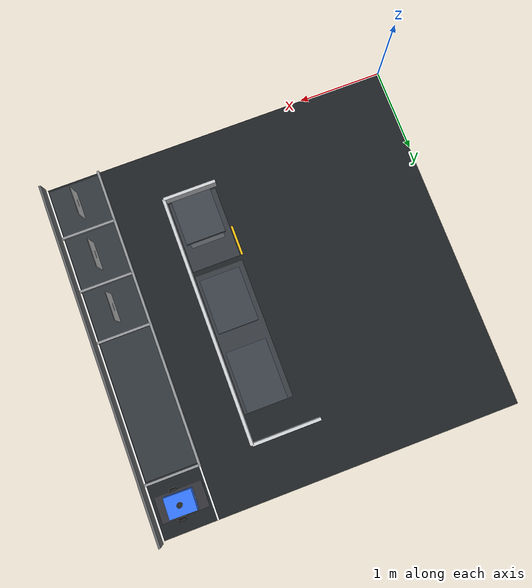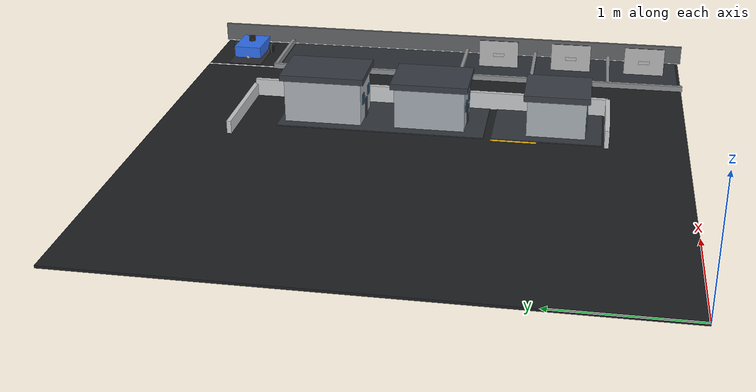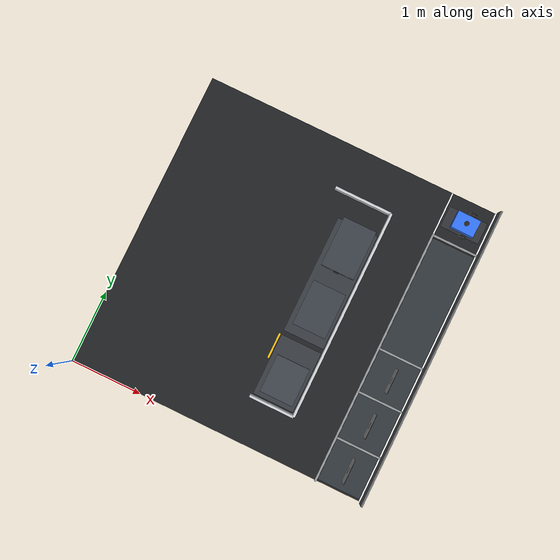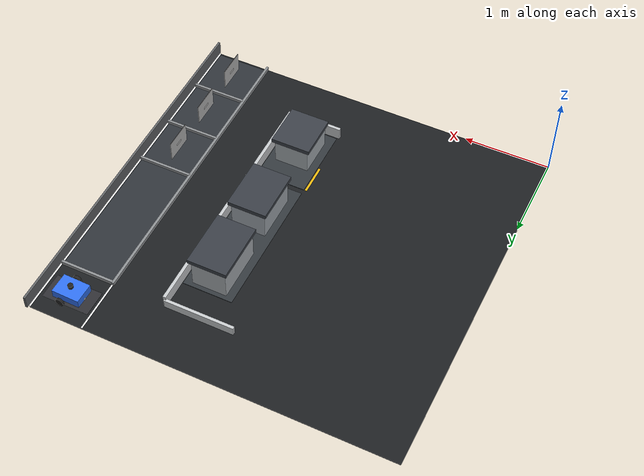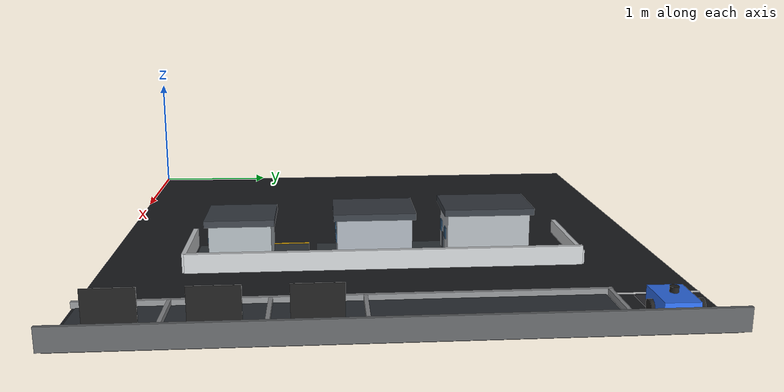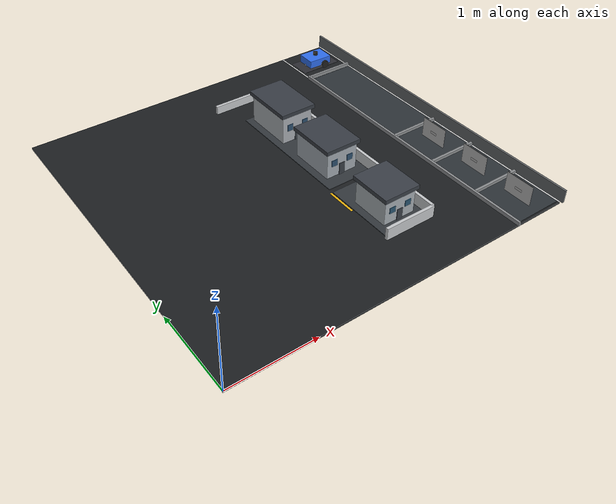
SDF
<sdf version="1.10">
 <world name="smart_community">
  <model name="ground">
   <static>true</static>
   <pose>2.1000000000000001 2.1000000000000001 -0.01 0 0 0</pose>
   <link name="link">
    <collision name="collision">
     <geometry><box><size>4.2000000000000002 4.2000000000000002 0.02</size></box></geometry>
    </collision>
    <visual name="visual">
     <geometry><box><size>4.2000000000000002 4.2000000000000002 0.02</size></box></geometry>
     <material>
      <ambient>0.109999999 0.119999997 0.129999995 1</ambient>
      <diffuse>0.109999999 0.119999997 0.129999995 1</diffuse>
     </material>
    </visual>
    <inertial>
     <mass>1</mass>
     <inertia><ixx>1</ixx><ixy>0</ixy><ixz>0</ixz><iyy>1</iyy><iyz>0</iyz><izz>1</izz></inertia>
    </inertial>
   </link>
  </model>
  <model name="line_outer_right">
   <static>true</static>
   <pose>4.2000000000000002 2.1000000000000001 0.0030000000000000001 0 0 0</pose>
   <link name="link">
    <visual name="visual">
     <geometry><box><size>0.017999999999999999 4.2000000000000002 0.0040000000000000001</size></box></geometry>
     <material>
      <ambient>0.949999988 0.949999988 0.949999988 1</ambient>
      <diffuse>0.949999988 0.949999988 0.949999988 1</diffuse>
     </material>
    </visual>
    <inertial>
     <mass>1</mass>
     <inertia><ixx>1</ixx><ixy>0</ixy><ixz>0</ixz><iyy>1</iyy><iyz>0</iyz><izz>1</izz></inertia>
    </inertial>
   </link>
  </model>
  <model name="wall_outer_right">
   <static>true</static>
   <pose>4.2249999999999996 2.1000000000000001 0.080000000000000002 0 0 0</pose>
   <link name="link">
    <collision name="collision">
     <geometry><box><size>0.025000000000000001 4.25 0.16</size></box></geometry>
    </collision>
    <visual name="visual">
     <geometry><box><size>0.025000000000000001 4.25 0.16</size></box></geometry>
     <material>
      <ambient>0.379999995 0.389999986 0.400000006 1</ambient>
      <diffuse>0.379999995 0.389999986 0.400000006 1</diffuse>
     </material>
    </visual>
    <inertial>
     <mass>1</mass>
     <inertia><ixx>1</ixx><ixy>0</ixy><ixz>0</ixz><iyy>1</iyy><iyz>0</iyz><izz>1</izz></inertia>
    </inertial>
   </link>
  </model>
  <model name="h_center_bottom">
   <static>true</static>
   <pose>2.6240000000000001 0.624 0.0030000000000000001 0 0 0</pose>
   <link name="link">
    <visual name="visual">
     <geometry><box><size>0.63200000000000001 0.017999999999999999 0.0040000000000000001</size></box></geometry>
     <material>
      <ambient>0.949999988 0.949999988 0.949999988 1</ambient>
      <diffuse>0.949999988 0.949999988 0.949999988 1</diffuse>
     </material>
    </visual>
    <inertial>
     <mass>1</mass>
     <inertia><ixx>1</ixx><ixy>0</ixy><ixz>0</ixz><iyy>1</iyy><iyz>0</iyz><izz>1</izz></inertia>
    </inertial>
   </link>
  </model>
  <model name="h_parking_top">
   <static>true</static>
   <pose>3.8839999999999999 3.5720000000000001 0.0030000000000000001 0 0 0</pose>
   <link name="link">
    <visual name="visual">
     <geometry><box><size>0.63200000000000001 0.017999999999999999 0.0040000000000000001</size></box></geometry>
     <material>
      <ambient>0.949999988 0.949999988 0.949999988 1</ambient>
      <diffuse>0.949999988 0.949999988 0.949999988 1</diffuse>
     </material>
    </visual>
    <inertial>
     <mass>1</mass>
     <inertia><ixx>1</ixx><ixy>0</ixy><ixz>0</ixz><iyy>1</iyy><iyz>0</iyz><izz>1</izz></inertia>
    </inertial>
   </link>
  </model>
  <model name="h_parking_3top">
   <static>true</static>
   <pose>3.8839999999999999 1.9119999999999999 0.0030000000000000001 0 0 0</pose>
   <link name="link">
    <visual name="visual">
     <geometry><box><size>0.63200000000000001 0.017999999999999999 0.0040000000000000001</size></box></geometry>
     <material>
      <ambient>0.949999988 0.949999988 0.949999988 1</ambient>
      <diffuse>0.949999988 0.949999988 0.949999988 1</diffuse>
     </material>
    </visual>
    <inertial>
     <mass>1</mass>
     <inertia><ixx>1</ixx><ixy>0</ixy><ixz>0</ixz><iyy>1</iyy><iyz>0</iyz><izz>1</izz></inertia>
    </inertial>
   </link>
  </model>
  <model name="h_parking_2top">
   <static>true</static>
   <pose>3.8839999999999999 1.2849999999999999 0.0030000000000000001 0 0 0</pose>
   <link name="link">
    <visual name="visual">
     <geometry><box><size>0.63200000000000001 0.017999999999999999 0.0040000000000000001</size></box></geometry>
     <material>
      <ambient>0.949999988 0.949999988 0.949999988 1</ambient>
      <diffuse>0.949999988 0.949999988 0.949999988 1</diffuse>
     </material>
    </visual>
    <inertial>
     <mass>1</mass>
     <inertia><ixx>1</ixx><ixy>0</ixy><ixz>0</ixz><iyy>1</iyy><iyz>0</iyz><izz>1</izz></inertia>
    </inertial>
   </link>
  </model>
  <model name="h_parking_1top">
   <static>true</static>
   <pose>3.8839999999999999 0.624 0.0030000000000000001 0 0 0</pose>
   <link name="link">
    <visual name="visual">
     <geometry><box><size>0.63200000000000001 0.017999999999999999 0.0040000000000000001</size></box></geometry>
     <material>
      <ambient>0.949999988 0.949999988 0.949999988 1</ambient>
      <diffuse>0.949999988 0.949999988 0.949999988 1</diffuse>
     </material>
    </visual>
    <inertial>
     <mass>1</mass>
     <inertia><ixx>1</ixx><ixy>0</ixy><ixz>0</ixz><iyy>1</iyy><iyz>0</iyz><izz>1</izz></inertia>
    </inertial>
   </link>
  </model>
  <model name="v_center_right">
   <static>true</static>
   <pose>2.9399999999999999 2.0979999999999999 0.0030000000000000001 0 0 0</pose>
   <link name="link">
    <visual name="visual">
     <geometry><box><size>0.017999999999999999 2.948 0.0040000000000000001</size></box></geometry>
     <material>
      <ambient>0.949999988 0.949999988 0.949999988 1</ambient>
      <diffuse>0.949999988 0.949999988 0.949999988 1</diffuse>
     </material>
    </visual>
    <inertial>
     <mass>1</mass>
     <inertia><ixx>1</ixx><ixy>0</ixy><ixz>0</ixz><iyy>1</iyy><iyz>0</iyz><izz>1</izz></inertia>
    </inertial>
   </link>
  </model>
  <model name="v_parking_left">
   <static>true</static>
   <pose>3.5680000000000001 2.1000000000000001 0.0030000000000000001 0 0 0</pose>
   <link name="link">
    <visual name="visual">
     <geometry><box><size>0.017999999999999999 4.2000000000000002 0.0040000000000000001</size></box></geometry>
     <material>
      <ambient>0.949999988 0.949999988 0.949999988 1</ambient>
      <diffuse>0.949999988 0.949999988 0.949999988 1</diffuse>
     </material>
    </visual>
    <inertial>
     <mass>1</mass>
     <inertia><ixx>1</ixx><ixy>0</ixy><ixz>0</ixz><iyy>1</iyy><iyz>0</iyz><izz>1</izz></inertia>
    </inertial>
   </link>
  </model>
  <model name="stopline_mid">
   <static>true</static>
   <pose>2.3100000000000001 1.3400000000000001 0.0040000000000000001 0 0 0</pose>
   <link name="link">
    <visual name="visual">
     <geometry><box><size>0.025000000000000001 0.35999999999999999 0.0040000000000000001</size></box></geometry>
     <material>
      <ambient>0.949999988 0.720000029 0.0500000007 1</ambient>
      <diffuse>0.949999988 0.720000029 0.0500000007 1</diffuse>
     </material>
    </visual>
    <inertial>
     <mass>1</mass>
     <inertia><ixx>1</ixx><ixy>0</ixy><ixz>0</ixz><iyy>1</iyy><iyz>0</iyz><izz>1</izz></inertia>
    </inertial>
   </link>
  </model>
  <include>
   <uri>file:///home/biao/aic_ws/install/smart_community_gazebo/share/smart_community_gazebo/models/vehicle_3</uri>
   <name>vehicle_3_board</name>
   <pose>3.8799999999999999 1.5980000000000001 0 0 0 0</pose>
  </include>
  <include>
   <uri>file:///home/biao/aic_ws/install/smart_community_gazebo/share/smart_community_gazebo/models/vehicle_2</uri>
   <name>vehicle_2_board</name>
   <pose>3.8799999999999999 0.95599999999999996 0 0 0 0</pose>
  </include>
  <include>
   <uri>file:///home/biao/aic_ws/install/smart_community_gazebo/share/smart_community_gazebo/models/vehicle_1</uri>
   <name>vehicle_1_board</name>
   <pose>3.8799999999999999 0.314 0 0 0 0</pose>
  </include>
  <model name="start_finish_zone">
   <static>true</static>
   <pose>3.8799999999999999 3.8799999999999999 0.0030000000000000001 0 0 0</pose>
   <link name="link">
    <visual name="visual">
     <geometry><box><size>0.55000000000000004 0.29999999999999999 0.0040000000000000001</size></box></geometry>
     <material>
      <ambient>0.180000007 0.180000007 0.200000003 1</ambient>
      <diffuse>0.180000007 0.180000007 0.200000003 1</diffuse>
     </material>
    </visual>
    <inertial>
     <mass>1</mass>
     <inertia><ixx>1</ixx><ixy>0</ixy><ixz>0</ixz><iyy>1</iyy><iyz>0</iyz><izz>1</izz></inertia>
    </inertial>
   </link>
  </model>
  <model name="plaza_center_lower">
   <static>true</static>
   <pose>2.6240000000000001 1.0900000000000001 0.0040000000000000001 0 0 0</pose>
   <link name="link">
    <visual name="visual">
     <geometry><box><size>0.57999999999999996 0.85999999999999999 0.0080000000000000002</size></box></geometry>
     <material>
      <ambient>0.200000003 0.219999999 0.239999995 1</ambient>
      <diffuse>0.200000003 0.219999999 0.239999995 1</diffuse>
     </material>
    </visual>
    <inertial>
     <mass>1</mass>
     <inertia><ixx>1</ixx><ixy>0</ixy><ixz>0</ixz><iyy>1</iyy><iyz>0</iyz><izz>1</izz></inertia>
    </inertial>
   </link>
  </model>
  <model name="plaza_center_upper">
   <static>true</static>
   <pose>2.6240000000000001 2.4100000000000001 0.0040000000000000001 0 0 0</pose>
   <link name="link">
    <visual name="visual">
     <geometry><box><size>0.57999999999999996 1.6599999999999999 0.0080000000000000002</size></box></geometry>
     <material>
      <ambient>0.200000003 0.219999999 0.239999995 1</ambient>
      <diffuse>0.200000003 0.219999999 0.239999995 1</diffuse>
     </material>
    </visual>
    <inertial>
     <mass>1</mass>
     <inertia><ixx>1</ixx><ixy>0</ixy><ixz>0</ixz><iyy>1</iyy><iyz>0</iyz><izz>1</izz></inertia>
    </inertial>
   </link>
  </model>
  <model name="parking_pavement">
   <static>true</static>
   <pose>3.8839999999999999 1.7849999999999999 0.0040000000000000001 0 0 0</pose>
   <link name="link">
    <visual name="visual">
     <geometry><box><size>0.59999999999999998 3.52 0.0080000000000000002</size></box></geometry>
     <material>
      <ambient>0.180000007 0.200000003 0.219999999 1</ambient>
      <diffuse>0.180000007 0.200000003 0.219999999 1</diffuse>
     </material>
    </visual>
    <inertial>
     <mass>1</mass>
     <inertia><ixx>1</ixx><ixy>0</ixy><ixz>0</ixz><iyy>1</iyy><iyz>0</iyz><izz>1</izz></inertia>
    </inertial>
   </link>
  </model>
  <model name="solid_h_center_bottom">
   <static>true</static>
   <pose>2.6240000000000001 0.624 0.072499999999999995 0 0 0</pose>
   <link name="link">
    <collision name="collision">
     <geometry><box><size>0.63200000000000001 0.035000000000000003 0.14499999999999999</size></box></geometry>
    </collision>
    <visual name="visual">
     <geometry><box><size>0.63200000000000001 0.035000000000000003 0.14499999999999999</size></box></geometry>
     <material>
      <ambient>0.779999971 0.790000021 0.800000012 1</ambient>
      <diffuse>0.779999971 0.790000021 0.800000012 1</diffuse>
     </material>
    </visual>
    <inertial>
     <mass>1</mass>
     <inertia><ixx>1</ixx><ixy>0</ixy><ixz>0</ixz><iyy>1</iyy><iyz>0</iyz><izz>1</izz></inertia>
    </inertial>
   </link>
  </model>
  <model name="solid_v_center_right">
   <static>true</static>
   <pose>2.9399999999999999 2.0979999999999999 0.072499999999999995 0 0 0</pose>
   <link name="link">
    <collision name="collision">
     <geometry><box><size>0.035000000000000003 2.948 0.14499999999999999</size></box></geometry>
    </collision>
    <visual name="visual">
     <geometry><box><size>0.035000000000000003 2.948 0.14499999999999999</size></box></geometry>
     <material>
      <ambient>0.779999971 0.790000021 0.800000012 1</ambient>
      <diffuse>0.779999971 0.790000021 0.800000012 1</diffuse>
     </material>
    </visual>
    <inertial>
     <mass>1</mass>
     <inertia><ixx>1</ixx><ixy>0</ixy><ixz>0</ixz><iyy>1</iyy><iyz>0</iyz><izz>1</izz></inertia>
    </inertial>
   </link>
  </model>
  <model name="curb_v_parking_left">
   <static>true</static>
   <pose>3.5618200302124023 1.7903760671615601 0.022500000894069672 0 0 0</pose>
   <link name="link">
    <collision name="collision">
     <geometry><box><size>0.028000000000000001 3.6000000000000001 0.044999999999999998</size></box></geometry>
    </collision>
    <visual name="visual">
     <geometry><box><size>0.028000000000000001 3.6000000000000001 0.044999999999999998</size></box></geometry>
     <material>
      <ambient>0.550000012 0.560000002 0.569999993 1</ambient>
      <diffuse>0.550000012 0.560000002 0.569999993 1</diffuse>
     </material>
    </visual>
    <inertial>
     <mass>1</mass>
     <inertia><ixx>1</ixx><ixy>0</ixy><ixz>0</ixz><iyy>1</iyy><iyz>0</iyz><izz>1</izz></inertia>
    </inertial>
   </link>
  </model>
  <model name="curb_h_parking_top">
   <static>true</static>
   <pose>3.8839999999999999 3.5720000000000001 0.022499999999999999 0 0 0</pose>
   <link name="link">
    <collision name="collision">
     <geometry><box><size>0.63200000000000001 0.028000000000000001 0.044999999999999998</size></box></geometry>
    </collision>
    <visual name="visual">
     <geometry><box><size>0.63200000000000001 0.028000000000000001 0.044999999999999998</size></box></geometry>
     <material>
      <ambient>0.550000012 0.560000002 0.569999993 1</ambient>
      <diffuse>0.550000012 0.560000002 0.569999993 1</diffuse>
     </material>
    </visual>
    <inertial>
     <mass>1</mass>
     <inertia><ixx>1</ixx><ixy>0</ixy><ixz>0</ixz><iyy>1</iyy><iyz>0</iyz><izz>1</izz></inertia>
    </inertial>
   </link>
  </model>
  <model name="curb_h_parking_3top">
   <static>true</static>
   <pose>3.8839999999999999 1.9119999999999999 0.022499999999999999 0 0 0</pose>
   <link name="link">
    <collision name="collision">
     <geometry><box><size>0.63200000000000001 0.028000000000000001 0.044999999999999998</size></box></geometry>
    </collision>
    <visual name="visual">
     <geometry><box><size>0.63200000000000001 0.028000000000000001 0.044999999999999998</size></box></geometry>
     <material>
      <ambient>0.550000012 0.560000002 0.569999993 1</ambient>
      <diffuse>0.550000012 0.560000002 0.569999993 1</diffuse>
     </material>
    </visual>
    <inertial>
     <mass>1</mass>
     <inertia><ixx>1</ixx><ixy>0</ixy><ixz>0</ixz><iyy>1</iyy><iyz>0</iyz><izz>1</izz></inertia>
    </inertial>
   </link>
  </model>
  <model name="curb_h_parking_2top">
   <static>true</static>
   <pose>3.8839999999999999 1.2849999999999999 0.022499999999999999 0 0 0</pose>
   <link name="link">
    <collision name="collision">
     <geometry><box><size>0.63200000000000001 0.028000000000000001 0.044999999999999998</size></box></geometry>
    </collision>
    <visual name="visual">
     <geometry><box><size>0.63200000000000001 0.028000000000000001 0.044999999999999998</size></box></geometry>
     <material>
      <ambient>0.550000012 0.560000002 0.569999993 1</ambient>
      <diffuse>0.550000012 0.560000002 0.569999993 1</diffuse>
     </material>
    </visual>
    <inertial>
     <mass>1</mass>
     <inertia><ixx>1</ixx><ixy>0</ixy><ixz>0</ixz><iyy>1</iyy><iyz>0</iyz><izz>1</izz></inertia>
    </inertial>
   </link>
  </model>
  <model name="curb_h_parking_1top">
   <static>true</static>
   <pose>3.8839999999999999 0.624 0.022499999999999999 0 0 0</pose>
   <link name="link">
    <collision name="collision">
     <geometry><box><size>0.63200000000000001 0.028000000000000001 0.044999999999999998</size></box></geometry>
    </collision>
    <visual name="visual">
     <geometry><box><size>0.63200000000000001 0.028000000000000001 0.044999999999999998</size></box></geometry>
     <material>
      <ambient>0.550000012 0.560000002 0.569999993 1</ambient>
      <diffuse>0.550000012 0.560000002 0.569999993 1</diffuse>
     </material>
    </visual>
    <inertial>
     <mass>1</mass>
     <inertia><ixx>1</ixx><ixy>0</ixy><ixz>0</ixz><iyy>1</iyy><iyz>0</iyz><izz>1</izz></inertia>
    </inertial>
   </link>
  </model>
  <model name="building_center_lower">
   <static>true</static>
   <pose>2.6240000000000001 1.02 0 0 0 0</pose>
   <link name="body">
    <collision name="collision">
     <pose>0 0 0.155 0 0 0</pose>
     <geometry><box><size>0.40000000000000002 0.46000000000000002 0.31</size></box></geometry>
    </collision>
    <visual name="wall">
     <pose>0 0 0.155 0 0 0</pose>
     <geometry><box><size>0.40000000000000002 0.46000000000000002 0.31</size></box></geometry>
     <material>
      <ambient>0.660000026 0.689999998 0.709999979 1</ambient>
      <diffuse>0.660000026 0.689999998 0.709999979 1</diffuse>
     </material>
    </visual>
    <visual name="roof">
     <pose>0 0 0.33500000000000002 0 0 0</pose>
     <geometry><box><size>0.45500000000000002 0.51500000000000001 0.050000000000000003</size></box></geometry>
     <material>
      <ambient>0.230000004 0.25 0.280000001 1</ambient>
      <diffuse>0.230000004 0.25 0.280000001 1</diffuse>
     </material>
    </visual>
    <visual name="window_l">
     <pose>-0.104 -0.23599999999999999 0.1736 0 0 0</pose>
     <geometry><box><size>0.075999999999999998 0.0080000000000000002 0.071300000000000002</size></box></geometry>
     <material>
      <ambient>0.159999996 0.330000013 0.439999998 1</ambient>
      <diffuse>0.159999996 0.330000013 0.439999998 1</diffuse>
     </material>
    </visual>
    <visual name="window_r">
     <pose>0.104 -0.23599999999999999 0.1736 0 0 0</pose>
     <geometry><box><size>0.075999999999999998 0.0080000000000000002 0.071300000000000002</size></box></geometry>
     <material>
      <ambient>0.159999996 0.330000013 0.439999998 1</ambient>
      <diffuse>0.159999996 0.330000013 0.439999998 1</diffuse>
     </material>
    </visual>
    <visual name="door">
     <pose>0 -0.23699999999999999 0.071300000000000002 0 0 0</pose>
     <geometry><box><size>0.071999999999999995 0.0089999999999999993 0.1426</size></box></geometry>
     <material>
      <ambient>0.230000004 0.25 0.280000001 1</ambient>
      <diffuse>0.230000004 0.25 0.280000001 1</diffuse>
     </material>
    </visual>
    <inertial>
     <mass>1</mass>
     <inertia><ixx>1</ixx><ixy>0</ixy><ixz>0</ixz><iyy>1</iyy><iyz>0</iyz><izz>1</izz></inertia>
    </inertial>
   </link>
  </model>
  <model name="building_center_mid">
   <static>true</static>
   <pose>2.6240000000000001 2.02 0 0 0 0</pose>
   <link name="body">
    <collision name="collision">
     <pose>0 0 0.17000000000000001 0 0 0</pose>
     <geometry><box><size>0.40000000000000002 0.56000000000000005 0.34000000000000002</size></box></geometry>
    </collision>
    <visual name="wall">
     <pose>0 0 0.17000000000000001 0 0 0</pose>
     <geometry><box><size>0.40000000000000002 0.56000000000000005 0.34000000000000002</size></box></geometry>
     <material>
      <ambient>0.639999986 0.670000017 0.699999988 1</ambient>
      <diffuse>0.639999986 0.670000017 0.699999988 1</diffuse>
     </material>
    </visual>
    <visual name="roof">
     <pose>0 0 0.36499999999999999 0 0 0</pose>
     <geometry><box><size>0.45500000000000002 0.61499999999999999 0.050000000000000003</size></box></geometry>
     <material>
      <ambient>0.219999999 0.239999995 0.270000011 1</ambient>
      <diffuse>0.219999999 0.239999995 0.270000011 1</diffuse>
     </material>
    </visual>
    <visual name="window_l">
     <pose>-0.104 -0.28599999999999998 0.19040000000000001 0 0 0</pose>
     <geometry><box><size>0.075999999999999998 0.0080000000000000002 0.078200000000000006</size></box></geometry>
     <material>
      <ambient>0.170000002 0.310000002 0.430000007 1</ambient>
      <diffuse>0.170000002 0.310000002 0.430000007 1</diffuse>
     </material>
    </visual>
    <visual name="window_r">
     <pose>0.104 -0.28599999999999998 0.19040000000000001 0 0 0</pose>
     <geometry><box><size>0.075999999999999998 0.0080000000000000002 0.078200000000000006</size></box></geometry>
     <material>
      <ambient>0.170000002 0.310000002 0.430000007 1</ambient>
      <diffuse>0.170000002 0.310000002 0.430000007 1</diffuse>
     </material>
    </visual>
    <visual name="door">
     <pose>0 -0.28699999999999998 0.078200000000000006 0 0 0</pose>
     <geometry><box><size>0.071999999999999995 0.0089999999999999993 0.15640000000000001</size></box></geometry>
     <material>
      <ambient>0.219999999 0.239999995 0.270000011 1</ambient>
      <diffuse>0.219999999 0.239999995 0.270000011 1</diffuse>
     </material>
    </visual>
    <inertial>
     <mass>1</mass>
     <inertia><ixx>1</ixx><ixy>0</ixy><ixz>0</ixz><iyy>1</iyy><iyz>0</iyz><izz>1</izz></inertia>
    </inertial>
   </link>
  </model>
  <model name="building_center_upper">
   <static>true</static>
   <pose>2.6240000000000001 2.8799999999999999 0 0 0 0</pose>
   <link name="body">
    <collision name="collision">
     <pose>0 0 0.17999999999999999 0 0 0</pose>
     <geometry><box><size>0.40000000000000002 0.62 0.35999999999999999</size></box></geometry>
    </collision>
    <visual name="wall">
     <pose>0 0 0.17999999999999999 0 0 0</pose>
     <geometry><box><size>0.40000000000000002 0.62 0.35999999999999999</size></box></geometry>
     <material>
      <ambient>0.670000017 0.689999998 0.709999979 1</ambient>
      <diffuse>0.670000017 0.689999998 0.709999979 1</diffuse>
     </material>
    </visual>
    <visual name="roof">
     <pose>0 0 0.38500000000000001 0 0 0</pose>
     <geometry><box><size>0.45500000000000002 0.67500000000000004 0.050000000000000003</size></box></geometry>
     <material>
      <ambient>0.219999999 0.239999995 0.270000011 1</ambient>
      <diffuse>0.219999999 0.239999995 0.270000011 1</diffuse>
     </material>
    </visual>
    <visual name="window_l">
     <pose>-0.104 -0.316 0.2016 0 0 0</pose>
     <geometry><box><size>0.075999999999999998 0.0080000000000000002 0.082799999999999999</size></box></geometry>
     <material>
      <ambient>0.170000002 0.310000002 0.430000007 1</ambient>
      <diffuse>0.170000002 0.310000002 0.430000007 1</diffuse>
     </material>
    </visual>
    <visual name="window_r">
     <pose>0.104 -0.316 0.2016 0 0 0</pose>
     <geometry><box><size>0.075999999999999998 0.0080000000000000002 0.082799999999999999</size></box></geometry>
     <material>
      <ambient>0.170000002 0.310000002 0.430000007 1</ambient>
      <diffuse>0.170000002 0.310000002 0.430000007 1</diffuse>
     </material>
    </visual>
    <visual name="door">
     <pose>0 -0.317 0.082799999999999999 0 0 0</pose>
     <geometry><box><size>0.071999999999999995 0.0089999999999999993 0.1656</size></box></geometry>
     <material>
      <ambient>0.219999999 0.239999995 0.270000011 1</ambient>
      <diffuse>0.219999999 0.239999995 0.270000011 1</diffuse>
     </material>
    </visual>
    <inertial>
     <mass>1</mass>
     <inertia><ixx>1</ixx><ixy>0</ixy><ixz>0</ixz><iyy>1</iyy><iyz>0</iyz><izz>1</izz></inertia>
    </inertial>
   </link>
  </model>
  <model name="solid_h_top_block_right">
   <static>true</static>
   <pose>2.5350000000000001 3.5720000000000001 0.052499999999999998 0 0 0</pose>
   <link name="link">
    <collision name="collision">
     <geometry><box><size>0.81000000000000005 0.035000000000000003 0.105</size></box></geometry>
    </collision>
    <visual name="visual">
     <geometry><box><size>0.81000000000000005 0.035000000000000003 0.105</size></box></geometry>
     <material>
      <ambient>0.779999971 0.790000021 0.800000012 1</ambient>
      <diffuse>0.779999971 0.790000021 0.800000012 1</diffuse>
     </material>
    </visual>
    <inertial>
     <mass>1</mass>
     <inertia><ixx>1</ixx><ixy>0</ixy><ixz>0</ixz><iyy>1</iyy><iyz>0</iyz><izz>1</izz></inertia>
    </inertial>
   </link>
  </model>
  <model name="patrol_bot">
   <link name="base_footprint">
    <inertial>
     <pose>0.001933085501858736 0 0.054944237918215608 0 0 0</pose>
     <mass>2.6899999999999999</mass>
     <inertia>
      <ixx>0.021288741635687738</ixx>
      <ixy>0</ixy>
      <ixz>-0.00052428996282527876</ixz>
      <iyy>0.022950689591078072</iyy>
      <iyz>0</iyz>
      <izz>0.031791947955390337</izz>
     </inertia>
    </inertial>
    <collision name="base_footprint_fixed_joint_lump__base_link_collision">
     <pose>0 0 0.070000000000000007 0 0 0</pose>
     <geometry><box><size>0.32000000000000001 0.23999999999999999 0.10000000000000001</size></box></geometry>
    </collision>
    <collision name="base_footprint_fixed_joint_lump__caster_collision_1">
     <pose>-0.14000000000000001 0 0.025000000000000001 0 0 0</pose>
     <geometry><sphere><radius>0.025000000000000001</radius></sphere></geometry>
     <surface><friction><ode><mu>0.01</mu><mu2>0.01</mu2></ode></friction></surface>
    </collision>
    <visual name="base_footprint_fixed_joint_lump__base_link_visual">
     <pose>0 0 0.070000000000000007 0 0 0</pose>
     <geometry><box><size>0.32000000000000001 0.23999999999999999 0.10000000000000001</size></box></geometry>
     <material>
      <diffuse>0.187500015 0.4375 0.9375 1</diffuse>
      <ambient>0.187500015 0.4375 0.9375 1</ambient>
     </material>
    </visual>
    <visual name="base_footprint_fixed_joint_lump__caster_visual_1">
     <pose>-0.14000000000000001 0 0.025000000000000001 0 0 0</pose>
     <geometry><sphere><radius>0.025000000000000001</radius></sphere></geometry>
     <material><diffuse>0.6875 0.6875 0.6875 1</diffuse><ambient>0.6875 0.6875 0.6875 1</ambient></material>
    </visual>
    <visual name="base_footprint_fixed_joint_lump__lidar_link_visual_2">
     <pose>0 0 0.14999999999999999 0 0 0</pose>
     <geometry>
      <cylinder><length>0.040000000000000001</length><radius>0.029999999999999999</radius></cylinder>
     </geometry>
     <material><diffuse>0.125 0.125 0.125 1</diffuse><ambient>0.125 0.125 0.125 1</ambient></material>
    </visual>
    <sensor name="camera" type="camera">
     <pose>0.16 0 0.11 0 -0.20000000000000023 0</pose>
     <topic>camera</topic>
     <update_rate>30</update_rate>
     <enable_metrics>false</enable_metrics>
     <camera name="__default__">
      <horizontal_fov>1.0469999999999999</horizontal_fov>
      <image><width>640</width><height>480</height><format>RGB_INT8</format><anti_aliasing>4</anti_aliasing></image>
      <camera_info_topic>__default__</camera_info_topic>
      <triggered>false</triggered>
      <clip><near>0.050000000000000003</near><far>20</far></clip>
      <save enabled="false"><path>__default__</path></save>
      <visibility_mask>4294967295</visibility_mask>
      <noise><type>none</type><mean>0</mean><stddev>0</stddev></noise>
      <distortion><k1>0</k1><k2>0</k2><k3>0</k3><p1>0</p1><p2>0</p2><center>0.5 0.5</center></distortion>
      <lens>
       <type>stereographic</type>
       <scale_to_hfov>true</scale_to_hfov>
       <cutoff_angle>1.5707963267948966</cutoff_angle>
       <env_texture_size>256</env_texture_size>
      </lens>
     </camera>
    </sensor>
    <sensor name="imu" type="imu">
     <pose>0 0 0.089999999999999997 0 0 0</pose>
     <topic>imu</topic>
     <update_rate>50</update_rate>
     <enable_metrics>true</enable_metrics>
     <imu>
      <orientation_reference_frame>
       <localization>CUSTOM</localization>
       <custom_rpy>0 0 0</custom_rpy>
       <grav_dir_x>1 0 0</grav_dir_x>
      </orientation_reference_frame>
      <angular_velocity>
       <x>
        <noise type="none">
         <mean>0</mean>
         <stddev>0</stddev>
         <bias_mean>0</bias_mean>
         <bias_stddev>0</bias_stddev>
         <dynamic_bias_stddev>0</dynamic_bias_stddev>
         <dynamic_bias_correlation_time>0</dynamic_bias_correlation_time>
         <precision>0</precision>
        </noise>
       </x>
       <y>
        <noise type="none">
         <mean>0</mean>
         <stddev>0</stddev>
         <bias_mean>0</bias_mean>
         <bias_stddev>0</bias_stddev>
         <dynamic_bias_stddev>0</dynamic_bias_stddev>
         <dynamic_bias_correlation_time>0</dynamic_bias_correlation_time>
         <precision>0</precision>
        </noise>
       </y>
       <z>
        <noise type="none">
         <mean>0</mean>
         <stddev>0</stddev>
         <bias_mean>0</bias_mean>
         <bias_stddev>0</bias_stddev>
         <dynamic_bias_stddev>0</dynamic_bias_stddev>
         <dynamic_bias_correlation_time>0</dynamic_bias_correlation_time>
         <precision>0</precision>
        </noise>
       </z>
      </angular_velocity>
      <linear_acceleration>
       <x>
        <noise type="none">
         <mean>0</mean>
         <stddev>0</stddev>
         <bias_mean>0</bias_mean>
         <bias_stddev>0</bias_stddev>
         <dynamic_bias_stddev>0</dynamic_bias_stddev>
         <dynamic_bias_correlation_time>0</dynamic_bias_correlation_time>
         <precision>0</precision>
        </noise>
       </x>
       <y>
        <noise type="none">
         <mean>0</mean>
         <stddev>0</stddev>
         <bias_mean>0</bias_mean>
         <bias_stddev>0</bias_stddev>
         <dynamic_bias_stddev>0</dynamic_bias_stddev>
         <dynamic_bias_correlation_time>0</dynamic_bias_correlation_time>
         <precision>0</precision>
        </noise>
       </y>
       <z>
        <noise type="none">
         <mean>0</mean>
         <stddev>0</stddev>
         <bias_mean>0</bias_mean>
         <bias_stddev>0</bias_stddev>
         <dynamic_bias_stddev>0</dynamic_bias_stddev>
         <dynamic_bias_correlation_time>0</dynamic_bias_correlation_time>
         <precision>0</precision>
        </noise>
       </z>
      </linear_acceleration>
      <enable_orientation>true</enable_orientation>
     </imu>
    </sensor>
    <sensor name="lidar" type="gpu_lidar">
     <pose>0 0 0.14999999999999999 0 0 0</pose>
     <topic>lidar</topic>
     <update_rate>30</update_rate>
     <enable_metrics>false</enable_metrics>
     <lidar>
      <scan>
       <horizontal>
        <samples>360</samples>
        <resolution>1</resolution>
        <min_angle>-3.1415899999999999</min_angle>
        <max_angle>3.1415899999999999</max_angle>
       </horizontal>
       <vertical>
        <samples>1</samples>
        <min_angle>0</min_angle>
        <max_angle>0</max_angle>
        <resolution>1</resolution>
       </vertical>
      </scan>
      <range><min>0.10000000000000001</min><max>12</max><resolution>0.01</resolution></range>
      <noise><type>none</type><mean>0</mean><stddev>0</stddev></noise>
      <visibility_mask>4294967295</visibility_mask>
     </lidar>
    </sensor>
   </link>
   <joint name="left_wheel_joint" type="revolute">
    <parent>base_footprint</parent>
    <child>left_wheel</child>
    <axis>
     <xyz>0 -1 0</xyz>
     <limit>
      <lower>-inf</lower>
      <upper>inf</upper>
      <effort>inf</effort>
      <velocity>inf</velocity>
      <stiffness>100000000</stiffness>
      <dissipation>1</dissipation>
     </limit>
     <dynamics>
      <spring_reference>0</spring_reference>
      <spring_stiffness>0</spring_stiffness>
      <damping>0</damping>
      <friction>0</friction>
     </dynamics>
    </axis>
   </joint>
   <link name="left_wheel">
    <pose>0.039999999999998259 0.16499999999999826 0.050000000000000003 -7.2378303684991694e-25 2.4961266433096232e-16 -6.9388939039072268e-18</pose>
    <inertial>
     <mass>0.10000000000000001</mass>
     <inertia>
      <ixx>6.0000000000000002e-05</ixx>
      <ixy>0</ixy>
      <ixz>0</ixz>
      <iyy>6.0000000000000002e-05</iyy>
      <iyz>0</iyz>
      <izz>6.0000000000000002e-05</izz>
     </inertia>
    </inertial>
    <collision name="left_wheel_collision">
     <pose>0 0 0 1.5708 0 0</pose>
     <geometry>
      <cylinder><length>0.025000000000000001</length><radius>0.050000000000000003</radius></cylinder>
     </geometry>
     <surface><friction><ode><mu>1</mu><mu2>1</mu2></ode></friction></surface>
    </collision>
    <visual name="left_wheel_visual">
     <pose>0 0 0 1.5708 0 0</pose>
     <geometry>
      <cylinder><length>0.025000000000000001</length><radius>0.050000000000000003</radius></cylinder>
     </geometry>
     <material><diffuse>0.125 0.125 0.125 1</diffuse><ambient>0.125 0.125 0.125 1</ambient></material>
    </visual>
   </link>
   <joint name="right_wheel_joint" type="revolute">
    <pose>6.9388939039072284e-18 0 0 0 0 0</pose>
    <parent>base_footprint</parent>
    <child>right_wheel</child>
    <axis>
     <xyz>0 -1 0</xyz>
     <limit>
      <lower>-inf</lower>
      <upper>inf</upper>
      <effort>inf</effort>
      <velocity>inf</velocity>
      <stiffness>100000000</stiffness>
      <dissipation>1</dissipation>
     </limit>
     <dynamics>
      <spring_reference>0</spring_reference>
      <spring_stiffness>0</spring_stiffness>
      <damping>0</damping>
      <friction>0</friction>
     </dynamics>
    </axis>
   </joint>
   <link name="right_wheel">
    <pose>0.039999999999996483 -0.16500000000000226 0.050000000000000017 8.2718061660720024e-25 -1.1685357248442004e-15 -6.9388939039072268e-18</pose>
    <inertial>
     <mass>0.10000000000000001</mass>
     <inertia>
      <ixx>6.0000000000000002e-05</ixx>
      <ixy>0</ixy>
      <ixz>0</ixz>
      <iyy>6.0000000000000002e-05</iyy>
      <iyz>0</iyz>
      <izz>6.0000000000000002e-05</izz>
     </inertia>
    </inertial>
    <collision name="right_wheel_collision">
     <pose>0 0 0 1.5708 0 0</pose>
     <geometry>
      <cylinder><length>0.025000000000000001</length><radius>0.050000000000000003</radius></cylinder>
     </geometry>
     <surface><friction><ode><mu>1</mu><mu2>1</mu2></ode></friction></surface>
    </collision>
    <visual name="right_wheel_visual">
     <pose>0 0 0 1.5708 0 0</pose>
     <geometry>
      <cylinder><length>0.025000000000000001</length><radius>0.050000000000000003</radius></cylinder>
     </geometry>
     <material><diffuse>0.125 0.125 0.125 1</diffuse><ambient>0.125 0.125 0.125 1</ambient></material>
    </visual>
   </link>
   <plugin name="gz::sim::systems::DiffDrive" filename="gz-sim-diff-drive-system">
    <left_joint>left_wheel_joint</left_joint>
    <right_joint>right_wheel_joint</right_joint>
    <wheel_separation>0.33</wheel_separation>
    <wheel_radius>0.05</wheel_radius>
    <odom_publish_frequency>30</odom_publish_frequency>
    <max_linear_acceleration>2.0</max_linear_acceleration>
    <min_linear_acceleration>-2.0</min_linear_acceleration>
    <max_angular_acceleration>4.0</max_angular_acceleration>
    <min_angular_acceleration>-4.0</min_angular_acceleration>
    <max_linear_velocity>0.5</max_linear_velocity>
    <min_linear_velocity>-0.5</min_linear_velocity>
    <max_angular_velocity>2.0</max_angular_velocity>
    <min_angular_velocity>-2.0</min_angular_velocity>
   </plugin>
   <plugin name="gz::sim::systems::JointStatePublisher" filename="gz-sim-joint-state-publisher-system">
    <update_rate>30</update_rate>
   </plugin>
   <plugin name="gz::sim::systems::Imu" filename="gz-sim-imu-system"/>
   <frame name="camera_joint" attached_to="base_link">
    <pose>0.16 0 0.059999999999999998 0 -0.20000000000000023 0</pose>
   </frame>
   <frame name="camera_link" attached_to="camera_joint"/>
   <frame name="caster_joint" attached_to="base_link">
    <pose>-0.14000000000000001 0 -0.025000000000000001 0 0 0</pose>
   </frame>
   <frame name="caster" attached_to="caster_joint"/>
   <frame name="imu_joint" attached_to="base_link"><pose>0 0 0.040000000000000001 0 0 0</pose></frame>
   <frame name="imu_link" attached_to="imu_joint"/>
   <frame name="lidar_joint" attached_to="base_link"><pose>0 0 0.10000000000000001 0 0 0</pose></frame>
   <frame name="lidar_link" attached_to="lidar_joint"/>
   <frame name="base_footprint_joint" attached_to="base_footprint">
    <pose>0 0 0.050000000000000003 0 0 0</pose>
   </frame>
   <frame name="base_link" attached_to="base_footprint_joint"/>
   <pose>3.880000114440918 3.8800001144409184 -1.2472782863347258e-07 -1.2590858141778972e-08 5.1060475439146168e-08 -0.01963345737779313</pose>
   <static>false</static>
  </model>
 </world>
</sdf>
